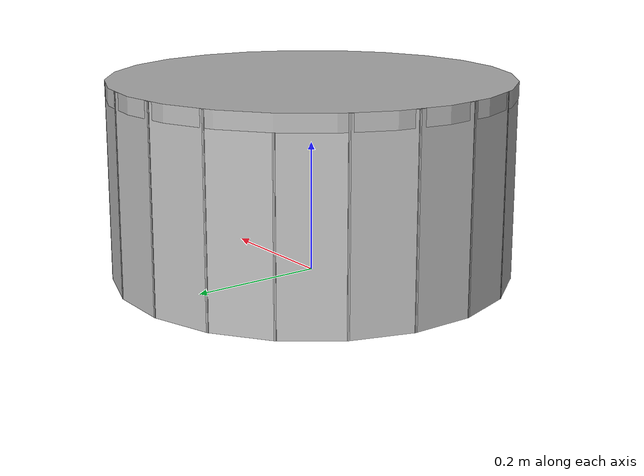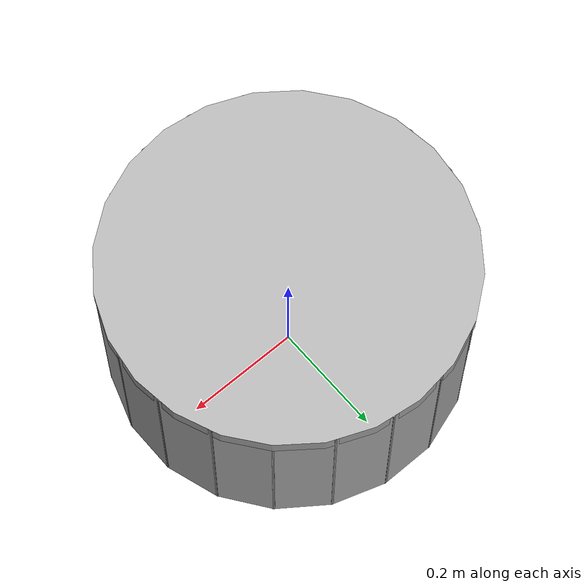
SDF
<?xml version="1.0"?>
<sdf version="1.9">
  <model name="sauvc_drum_red">
    <static>true</static>
    <plugin filename="gz-sim-label-system" name="gz::sim::systems::Label">
      <label>7</label>
    </plugin>
    <link name="base">
      <pose>0 0 0.01 0 0 0</pose>
      <inertial>
        <pose>0 0 0 0 0 0</pose>
        <mass>3</mass>
        <inertia>
          <ixx>0.0676</ixx><ixy>0</ixy><ixz>0</ixz>
          <iyy>0.0676</iyy><iyz>0</iyz>
          <izz>0.135</izz>
        </inertia>
      </inertial>
      <visual name="base_visual">
        <pose>0 0 0 0 0 0</pose>
        <geometry><cylinder><radius>0.3</radius><length>0.02</length></cylinder></geometry>
        <material>
          <ambient>0.8 0.1 0.1 1</ambient>
          <diffuse>0.8 0.1 0.1 1</diffuse>
          <specular>0.2 0.2 0.2 1</specular>
          <emissive>0.44 0.055 0.055 1</emissive>
        </material>
      </visual>
      <collision name="base_collision">
        <pose>0 0 0 0 0 0</pose>
        <geometry><cylinder><radius>0.3</radius><length>0.02</length></cylinder></geometry>
      </collision>
    </link>
    <link name="rim">
      <pose>0 0 0.288 0 0 0</pose>
      <inertial>
        <pose>0 0 0 0 0 0</pose>
        <mass>0.3</mass>
        <inertia>
          <ixx>0.0069925</ixx><ixy>0</ixy><ixz>0</ixz>
          <iyy>0.0069925</iyy><iyz>0</iyz>
          <izz>0.0139537</izz>
        </inertia>
      </inertial>
      <visual name="rim_visual">
        <pose>0 0 0 0 0 0</pose>
        <geometry><cylinder><radius>0.305</radius><length>0.025</length></cylinder></geometry>
        <material>
          <ambient>0.7 0.7 0.7 1</ambient>
          <diffuse>0.7 0.7 0.7 1</diffuse>
          <specular>0.35 0.35 0.35 1</specular>
          <emissive>0.08 0.08 0.08 1</emissive>
          <pbr>
            <metal>
              <albedo_map>model://sauvc_textures/drum_rim.png</albedo_map>
              <metalness>0.0</metalness>
              <roughness>0.4</roughness>
            </metal>
          </pbr>
        </material>
      </visual>
    </link>
    <link name="wall_0">
      <pose>0.29 0 0.15 0 0 0.000000</pose>
      <inertial>
        <pose>0 0 0 0 0 0</pose>
        <mass>0.2</mass>
        <inertia>
          <ixx>0.00166188</ixx><ixy>0</ixy><ixz>0</ixz>
          <iyy>0.00150667</iyy><iyz>0</iyz>
          <izz>0.000168547</izz>
        </inertia>
      </inertial>
      <visual name="wall_0_visual">
        <pose>0 0 0 0 0 0</pose>
        <geometry><box><size>0.02 0.0985537 0.3</size></box></geometry>
        <material>
          <ambient>0.72 0.72 0.72 1</ambient>
          <diffuse>0.72 0.72 0.72 1</diffuse>
          <specular>0.14 0.14 0.14 1</specular>
          <emissive>0.1 0.1 0.1 1</emissive>
          <pbr>
            <metal>
              <albedo_map>model://sauvc_textures/drum_wall_red.png</albedo_map>
              <metalness>0.0</metalness>
              <roughness_map>model://sauvc_textures/rough_plastic.png</roughness_map>
              <normal_map>model://sauvc_textures/norm_plastic.png</normal_map>
            </metal>
          </pbr>
        </material>
      </visual>
    </link>
    <link name="wall_1">
      <pose>0.275806 0.0896149 0.15 0 0 0.314159</pose>
      <inertial>
        <pose>0 0 0 0 0 0</pose>
        <mass>0.2</mass>
        <inertia>
          <ixx>0.00166188</ixx><ixy>0</ixy><ixz>0</ixz>
          <iyy>0.00150667</iyy><iyz>0</iyz>
          <izz>0.000168547</izz>
        </inertia>
      </inertial>
      <visual name="wall_1_visual">
        <pose>0 0 0 0 0 0</pose>
        <geometry><box><size>0.02 0.0985537 0.3</size></box></geometry>
        <material>
          <ambient>0.72 0.72 0.72 1</ambient>
          <diffuse>0.72 0.72 0.72 1</diffuse>
          <specular>0.14 0.14 0.14 1</specular>
          <emissive>0.1 0.1 0.1 1</emissive>
          <pbr>
            <metal>
              <albedo_map>model://sauvc_textures/drum_wall_red.png</albedo_map>
              <metalness>0.0</metalness>
              <roughness_map>model://sauvc_textures/rough_plastic.png</roughness_map>
              <normal_map>model://sauvc_textures/norm_plastic.png</normal_map>
            </metal>
          </pbr>
        </material>
      </visual>
    </link>
    <link name="wall_2">
      <pose>0.234615 0.170458 0.15 0 0 0.628319</pose>
      <inertial>
        <pose>0 0 0 0 0 0</pose>
        <mass>0.2</mass>
        <inertia>
          <ixx>0.00166188</ixx><ixy>0</ixy><ixz>0</ixz>
          <iyy>0.00150667</iyy><iyz>0</iyz>
          <izz>0.000168547</izz>
        </inertia>
      </inertial>
      <visual name="wall_2_visual">
        <pose>0 0 0 0 0 0</pose>
        <geometry><box><size>0.02 0.0985537 0.3</size></box></geometry>
        <material>
          <ambient>0.72 0.72 0.72 1</ambient>
          <diffuse>0.72 0.72 0.72 1</diffuse>
          <specular>0.14 0.14 0.14 1</specular>
          <emissive>0.1 0.1 0.1 1</emissive>
          <pbr>
            <metal>
              <albedo_map>model://sauvc_textures/drum_wall_red.png</albedo_map>
              <metalness>0.0</metalness>
              <roughness_map>model://sauvc_textures/rough_plastic.png</roughness_map>
              <normal_map>model://sauvc_textures/norm_plastic.png</normal_map>
            </metal>
          </pbr>
        </material>
      </visual>
    </link>
    <link name="wall_3">
      <pose>0.170458 0.234615 0.15 0 0 0.942478</pose>
      <inertial>
        <pose>0 0 0 0 0 0</pose>
        <mass>0.2</mass>
        <inertia>
          <ixx>0.00166188</ixx><ixy>0</ixy><ixz>0</ixz>
          <iyy>0.00150667</iyy><iyz>0</iyz>
          <izz>0.000168547</izz>
        </inertia>
      </inertial>
      <visual name="wall_3_visual">
        <pose>0 0 0 0 0 0</pose>
        <geometry><box><size>0.02 0.0985537 0.3</size></box></geometry>
        <material>
          <ambient>0.72 0.72 0.72 1</ambient>
          <diffuse>0.72 0.72 0.72 1</diffuse>
          <specular>0.14 0.14 0.14 1</specular>
          <emissive>0.1 0.1 0.1 1</emissive>
          <pbr>
            <metal>
              <albedo_map>model://sauvc_textures/drum_wall_red.png</albedo_map>
              <metalness>0.0</metalness>
              <roughness_map>model://sauvc_textures/rough_plastic.png</roughness_map>
              <normal_map>model://sauvc_textures/norm_plastic.png</normal_map>
            </metal>
          </pbr>
        </material>
      </visual>
    </link>
    <link name="wall_4">
      <pose>0.0896149 0.275806 0.15 0 0 1.256637</pose>
      <inertial>
        <pose>0 0 0 0 0 0</pose>
        <mass>0.2</mass>
        <inertia>
          <ixx>0.00166188</ixx><ixy>0</ixy><ixz>0</ixz>
          <iyy>0.00150667</iyy><iyz>0</iyz>
          <izz>0.000168547</izz>
        </inertia>
      </inertial>
      <visual name="wall_4_visual">
        <pose>0 0 0 0 0 0</pose>
        <geometry><box><size>0.02 0.0985537 0.3</size></box></geometry>
        <material>
          <ambient>0.72 0.72 0.72 1</ambient>
          <diffuse>0.72 0.72 0.72 1</diffuse>
          <specular>0.14 0.14 0.14 1</specular>
          <emissive>0.1 0.1 0.1 1</emissive>
          <pbr>
            <metal>
              <albedo_map>model://sauvc_textures/drum_wall_red.png</albedo_map>
              <metalness>0.0</metalness>
              <roughness_map>model://sauvc_textures/rough_plastic.png</roughness_map>
              <normal_map>model://sauvc_textures/norm_plastic.png</normal_map>
            </metal>
          </pbr>
        </material>
      </visual>
    </link>
    <link name="wall_5">
      <pose>1.77574e-17 0.29 0.15 0 0 1.570796</pose>
      <inertial>
        <pose>0 0 0 0 0 0</pose>
        <mass>0.2</mass>
        <inertia>
          <ixx>0.00166188</ixx><ixy>0</ixy><ixz>0</ixz>
          <iyy>0.00150667</iyy><iyz>0</iyz>
          <izz>0.000168547</izz>
        </inertia>
      </inertial>
      <visual name="wall_5_visual">
        <pose>0 0 0 0 0 0</pose>
        <geometry><box><size>0.02 0.0985537 0.3</size></box></geometry>
        <material>
          <ambient>0.72 0.72 0.72 1</ambient>
          <diffuse>0.72 0.72 0.72 1</diffuse>
          <specular>0.14 0.14 0.14 1</specular>
          <emissive>0.1 0.1 0.1 1</emissive>
          <pbr>
            <metal>
              <albedo_map>model://sauvc_textures/drum_wall_red.png</albedo_map>
              <metalness>0.0</metalness>
              <roughness_map>model://sauvc_textures/rough_plastic.png</roughness_map>
              <normal_map>model://sauvc_textures/norm_plastic.png</normal_map>
            </metal>
          </pbr>
        </material>
      </visual>
    </link>
    <link name="wall_6">
      <pose>-0.0896149 0.275806 0.15 0 0 1.884956</pose>
      <inertial>
        <pose>0 0 0 0 0 0</pose>
        <mass>0.2</mass>
        <inertia>
          <ixx>0.00166188</ixx><ixy>0</ixy><ixz>0</ixz>
          <iyy>0.00150667</iyy><iyz>0</iyz>
          <izz>0.000168547</izz>
        </inertia>
      </inertial>
      <visual name="wall_6_visual">
        <pose>0 0 0 0 0 0</pose>
        <geometry><box><size>0.02 0.0985537 0.3</size></box></geometry>
        <material>
          <ambient>0.72 0.72 0.72 1</ambient>
          <diffuse>0.72 0.72 0.72 1</diffuse>
          <specular>0.14 0.14 0.14 1</specular>
          <emissive>0.1 0.1 0.1 1</emissive>
          <pbr>
            <metal>
              <albedo_map>model://sauvc_textures/drum_wall_red.png</albedo_map>
              <metalness>0.0</metalness>
              <roughness_map>model://sauvc_textures/rough_plastic.png</roughness_map>
              <normal_map>model://sauvc_textures/norm_plastic.png</normal_map>
            </metal>
          </pbr>
        </material>
      </visual>
    </link>
    <link name="wall_7">
      <pose>-0.170458 0.234615 0.15 0 0 2.199115</pose>
      <inertial>
        <pose>0 0 0 0 0 0</pose>
        <mass>0.2</mass>
        <inertia>
          <ixx>0.00166188</ixx><ixy>0</ixy><ixz>0</ixz>
          <iyy>0.00150667</iyy><iyz>0</iyz>
          <izz>0.000168547</izz>
        </inertia>
      </inertial>
      <visual name="wall_7_visual">
        <pose>0 0 0 0 0 0</pose>
        <geometry><box><size>0.02 0.0985537 0.3</size></box></geometry>
        <material>
          <ambient>0.72 0.72 0.72 1</ambient>
          <diffuse>0.72 0.72 0.72 1</diffuse>
          <specular>0.14 0.14 0.14 1</specular>
          <emissive>0.1 0.1 0.1 1</emissive>
          <pbr>
            <metal>
              <albedo_map>model://sauvc_textures/drum_wall_red.png</albedo_map>
              <metalness>0.0</metalness>
              <roughness_map>model://sauvc_textures/rough_plastic.png</roughness_map>
              <normal_map>model://sauvc_textures/norm_plastic.png</normal_map>
            </metal>
          </pbr>
        </material>
      </visual>
    </link>
    <link name="wall_8">
      <pose>-0.234615 0.170458 0.15 0 0 2.513274</pose>
      <inertial>
        <pose>0 0 0 0 0 0</pose>
        <mass>0.2</mass>
        <inertia>
          <ixx>0.00166188</ixx><ixy>0</ixy><ixz>0</ixz>
          <iyy>0.00150667</iyy><iyz>0</iyz>
          <izz>0.000168547</izz>
        </inertia>
      </inertial>
      <visual name="wall_8_visual">
        <pose>0 0 0 0 0 0</pose>
        <geometry><box><size>0.02 0.0985537 0.3</size></box></geometry>
        <material>
          <ambient>0.72 0.72 0.72 1</ambient>
          <diffuse>0.72 0.72 0.72 1</diffuse>
          <specular>0.14 0.14 0.14 1</specular>
          <emissive>0.1 0.1 0.1 1</emissive>
          <pbr>
            <metal>
              <albedo_map>model://sauvc_textures/drum_wall_red.png</albedo_map>
              <metalness>0.0</metalness>
              <roughness_map>model://sauvc_textures/rough_plastic.png</roughness_map>
              <normal_map>model://sauvc_textures/norm_plastic.png</normal_map>
            </metal>
          </pbr>
        </material>
      </visual>
    </link>
    <link name="wall_9">
      <pose>-0.275806 0.0896149 0.15 0 0 2.827433</pose>
      <inertial>
        <pose>0 0 0 0 0 0</pose>
        <mass>0.2</mass>
        <inertia>
          <ixx>0.00166188</ixx><ixy>0</ixy><ixz>0</ixz>
          <iyy>0.00150667</iyy><iyz>0</iyz>
          <izz>0.000168547</izz>
        </inertia>
      </inertial>
      <visual name="wall_9_visual">
        <pose>0 0 0 0 0 0</pose>
        <geometry><box><size>0.02 0.0985537 0.3</size></box></geometry>
        <material>
          <ambient>0.72 0.72 0.72 1</ambient>
          <diffuse>0.72 0.72 0.72 1</diffuse>
          <specular>0.14 0.14 0.14 1</specular>
          <emissive>0.1 0.1 0.1 1</emissive>
          <pbr>
            <metal>
              <albedo_map>model://sauvc_textures/drum_wall_red.png</albedo_map>
              <metalness>0.0</metalness>
              <roughness_map>model://sauvc_textures/rough_plastic.png</roughness_map>
              <normal_map>model://sauvc_textures/norm_plastic.png</normal_map>
            </metal>
          </pbr>
        </material>
      </visual>
    </link>
    <link name="wall_10">
      <pose>-0.29 3.55148e-17 0.15 0 0 3.141593</pose>
      <inertial>
        <pose>0 0 0 0 0 0</pose>
        <mass>0.2</mass>
        <inertia>
          <ixx>0.00166188</ixx><ixy>0</ixy><ixz>0</ixz>
          <iyy>0.00150667</iyy><iyz>0</iyz>
          <izz>0.000168547</izz>
        </inertia>
      </inertial>
      <visual name="wall_10_visual">
        <pose>0 0 0 0 0 0</pose>
        <geometry><box><size>0.02 0.0985537 0.3</size></box></geometry>
        <material>
          <ambient>0.72 0.72 0.72 1</ambient>
          <diffuse>0.72 0.72 0.72 1</diffuse>
          <specular>0.14 0.14 0.14 1</specular>
          <emissive>0.1 0.1 0.1 1</emissive>
          <pbr>
            <metal>
              <albedo_map>model://sauvc_textures/drum_wall_red.png</albedo_map>
              <metalness>0.0</metalness>
              <roughness_map>model://sauvc_textures/rough_plastic.png</roughness_map>
              <normal_map>model://sauvc_textures/norm_plastic.png</normal_map>
            </metal>
          </pbr>
        </material>
      </visual>
    </link>
    <link name="wall_11">
      <pose>-0.275806 -0.0896149 0.15 0 0 3.455752</pose>
      <inertial>
        <pose>0 0 0 0 0 0</pose>
        <mass>0.2</mass>
        <inertia>
          <ixx>0.00166188</ixx><ixy>0</ixy><ixz>0</ixz>
          <iyy>0.00150667</iyy><iyz>0</iyz>
          <izz>0.000168547</izz>
        </inertia>
      </inertial>
      <visual name="wall_11_visual">
        <pose>0 0 0 0 0 0</pose>
        <geometry><box><size>0.02 0.0985537 0.3</size></box></geometry>
        <material>
          <ambient>0.72 0.72 0.72 1</ambient>
          <diffuse>0.72 0.72 0.72 1</diffuse>
          <specular>0.14 0.14 0.14 1</specular>
          <emissive>0.1 0.1 0.1 1</emissive>
          <pbr>
            <metal>
              <albedo_map>model://sauvc_textures/drum_wall_red.png</albedo_map>
              <metalness>0.0</metalness>
              <roughness_map>model://sauvc_textures/rough_plastic.png</roughness_map>
              <normal_map>model://sauvc_textures/norm_plastic.png</normal_map>
            </metal>
          </pbr>
        </material>
      </visual>
    </link>
    <link name="wall_12">
      <pose>-0.234615 -0.170458 0.15 0 0 3.769911</pose>
      <inertial>
        <pose>0 0 0 0 0 0</pose>
        <mass>0.2</mass>
        <inertia>
          <ixx>0.00166188</ixx><ixy>0</ixy><ixz>0</ixz>
          <iyy>0.00150667</iyy><iyz>0</iyz>
          <izz>0.000168547</izz>
        </inertia>
      </inertial>
      <visual name="wall_12_visual">
        <pose>0 0 0 0 0 0</pose>
        <geometry><box><size>0.02 0.0985537 0.3</size></box></geometry>
        <material>
          <ambient>0.72 0.72 0.72 1</ambient>
          <diffuse>0.72 0.72 0.72 1</diffuse>
          <specular>0.14 0.14 0.14 1</specular>
          <emissive>0.1 0.1 0.1 1</emissive>
          <pbr>
            <metal>
              <albedo_map>model://sauvc_textures/drum_wall_red.png</albedo_map>
              <metalness>0.0</metalness>
              <roughness_map>model://sauvc_textures/rough_plastic.png</roughness_map>
              <normal_map>model://sauvc_textures/norm_plastic.png</normal_map>
            </metal>
          </pbr>
        </material>
      </visual>
    </link>
    <link name="wall_13">
      <pose>-0.170458 -0.234615 0.15 0 0 4.084070</pose>
      <inertial>
        <pose>0 0 0 0 0 0</pose>
        <mass>0.2</mass>
        <inertia>
          <ixx>0.00166188</ixx><ixy>0</ixy><ixz>0</ixz>
          <iyy>0.00150667</iyy><iyz>0</iyz>
          <izz>0.000168547</izz>
        </inertia>
      </inertial>
      <visual name="wall_13_visual">
        <pose>0 0 0 0 0 0</pose>
        <geometry><box><size>0.02 0.0985537 0.3</size></box></geometry>
        <material>
          <ambient>0.72 0.72 0.72 1</ambient>
          <diffuse>0.72 0.72 0.72 1</diffuse>
          <specular>0.14 0.14 0.14 1</specular>
          <emissive>0.1 0.1 0.1 1</emissive>
          <pbr>
            <metal>
              <albedo_map>model://sauvc_textures/drum_wall_red.png</albedo_map>
              <metalness>0.0</metalness>
              <roughness_map>model://sauvc_textures/rough_plastic.png</roughness_map>
              <normal_map>model://sauvc_textures/norm_plastic.png</normal_map>
            </metal>
          </pbr>
        </material>
      </visual>
    </link>
    <link name="wall_14">
      <pose>-0.0896149 -0.275806 0.15 0 0 4.398230</pose>
      <inertial>
        <pose>0 0 0 0 0 0</pose>
        <mass>0.2</mass>
        <inertia>
          <ixx>0.00166188</ixx><ixy>0</ixy><ixz>0</ixz>
          <iyy>0.00150667</iyy><iyz>0</iyz>
          <izz>0.000168547</izz>
        </inertia>
      </inertial>
      <visual name="wall_14_visual">
        <pose>0 0 0 0 0 0</pose>
        <geometry><box><size>0.02 0.0985537 0.3</size></box></geometry>
        <material>
          <ambient>0.72 0.72 0.72 1</ambient>
          <diffuse>0.72 0.72 0.72 1</diffuse>
          <specular>0.14 0.14 0.14 1</specular>
          <emissive>0.1 0.1 0.1 1</emissive>
          <pbr>
            <metal>
              <albedo_map>model://sauvc_textures/drum_wall_red.png</albedo_map>
              <metalness>0.0</metalness>
              <roughness_map>model://sauvc_textures/rough_plastic.png</roughness_map>
              <normal_map>model://sauvc_textures/norm_plastic.png</normal_map>
            </metal>
          </pbr>
        </material>
      </visual>
    </link>
    <link name="wall_15">
      <pose>-5.32721e-17 -0.29 0.15 0 0 4.712389</pose>
      <inertial>
        <pose>0 0 0 0 0 0</pose>
        <mass>0.2</mass>
        <inertia>
          <ixx>0.00166188</ixx><ixy>0</ixy><ixz>0</ixz>
          <iyy>0.00150667</iyy><iyz>0</iyz>
          <izz>0.000168547</izz>
        </inertia>
      </inertial>
      <visual name="wall_15_visual">
        <pose>0 0 0 0 0 0</pose>
        <geometry><box><size>0.02 0.0985537 0.3</size></box></geometry>
        <material>
          <ambient>0.72 0.72 0.72 1</ambient>
          <diffuse>0.72 0.72 0.72 1</diffuse>
          <specular>0.14 0.14 0.14 1</specular>
          <emissive>0.1 0.1 0.1 1</emissive>
          <pbr>
            <metal>
              <albedo_map>model://sauvc_textures/drum_wall_red.png</albedo_map>
              <metalness>0.0</metalness>
              <roughness_map>model://sauvc_textures/rough_plastic.png</roughness_map>
              <normal_map>model://sauvc_textures/norm_plastic.png</normal_map>
            </metal>
          </pbr>
        </material>
      </visual>
    </link>
    <link name="wall_16">
      <pose>0.0896149 -0.275806 0.15 0 0 5.026548</pose>
      <inertial>
        <pose>0 0 0 0 0 0</pose>
        <mass>0.2</mass>
        <inertia>
          <ixx>0.00166188</ixx><ixy>0</ixy><ixz>0</ixz>
          <iyy>0.00150667</iyy><iyz>0</iyz>
          <izz>0.000168547</izz>
        </inertia>
      </inertial>
      <visual name="wall_16_visual">
        <pose>0 0 0 0 0 0</pose>
        <geometry><box><size>0.02 0.0985537 0.3</size></box></geometry>
        <material>
          <ambient>0.72 0.72 0.72 1</ambient>
          <diffuse>0.72 0.72 0.72 1</diffuse>
          <specular>0.14 0.14 0.14 1</specular>
          <emissive>0.1 0.1 0.1 1</emissive>
          <pbr>
            <metal>
              <albedo_map>model://sauvc_textures/drum_wall_red.png</albedo_map>
              <metalness>0.0</metalness>
              <roughness_map>model://sauvc_textures/rough_plastic.png</roughness_map>
              <normal_map>model://sauvc_textures/norm_plastic.png</normal_map>
            </metal>
          </pbr>
        </material>
      </visual>
    </link>
    <link name="wall_17">
      <pose>0.170458 -0.234615 0.15 0 0 5.340708</pose>
      <inertial>
        <pose>0 0 0 0 0 0</pose>
        <mass>0.2</mass>
        <inertia>
          <ixx>0.00166188</ixx><ixy>0</ixy><ixz>0</ixz>
          <iyy>0.00150667</iyy><iyz>0</iyz>
          <izz>0.000168547</izz>
        </inertia>
      </inertial>
      <visual name="wall_17_visual">
        <pose>0 0 0 0 0 0</pose>
        <geometry><box><size>0.02 0.0985537 0.3</size></box></geometry>
        <material>
          <ambient>0.72 0.72 0.72 1</ambient>
          <diffuse>0.72 0.72 0.72 1</diffuse>
          <specular>0.14 0.14 0.14 1</specular>
          <emissive>0.1 0.1 0.1 1</emissive>
          <pbr>
            <metal>
              <albedo_map>model://sauvc_textures/drum_wall_red.png</albedo_map>
              <metalness>0.0</metalness>
              <roughness_map>model://sauvc_textures/rough_plastic.png</roughness_map>
              <normal_map>model://sauvc_textures/norm_plastic.png</normal_map>
            </metal>
          </pbr>
        </material>
      </visual>
    </link>
    <link name="wall_18">
      <pose>0.234615 -0.170458 0.15 0 0 5.654867</pose>
      <inertial>
        <pose>0 0 0 0 0 0</pose>
        <mass>0.2</mass>
        <inertia>
          <ixx>0.00166188</ixx><ixy>0</ixy><ixz>0</ixz>
          <iyy>0.00150667</iyy><iyz>0</iyz>
          <izz>0.000168547</izz>
        </inertia>
      </inertial>
      <visual name="wall_18_visual">
        <pose>0 0 0 0 0 0</pose>
        <geometry><box><size>0.02 0.0985537 0.3</size></box></geometry>
        <material>
          <ambient>0.72 0.72 0.72 1</ambient>
          <diffuse>0.72 0.72 0.72 1</diffuse>
          <specular>0.14 0.14 0.14 1</specular>
          <emissive>0.1 0.1 0.1 1</emissive>
          <pbr>
            <metal>
              <albedo_map>model://sauvc_textures/drum_wall_red.png</albedo_map>
              <metalness>0.0</metalness>
              <roughness_map>model://sauvc_textures/rough_plastic.png</roughness_map>
              <normal_map>model://sauvc_textures/norm_plastic.png</normal_map>
            </metal>
          </pbr>
        </material>
      </visual>
    </link>
    <link name="wall_19">
      <pose>0.275806 -0.0896149 0.15 0 0 5.969026</pose>
      <inertial>
        <pose>0 0 0 0 0 0</pose>
        <mass>0.2</mass>
        <inertia>
          <ixx>0.00166188</ixx><ixy>0</ixy><ixz>0</ixz>
          <iyy>0.00150667</iyy><iyz>0</iyz>
          <izz>0.000168547</izz>
        </inertia>
      </inertial>
      <visual name="wall_19_visual">
        <pose>0 0 0 0 0 0</pose>
        <geometry><box><size>0.02 0.0985537 0.3</size></box></geometry>
        <material>
          <ambient>0.72 0.72 0.72 1</ambient>
          <diffuse>0.72 0.72 0.72 1</diffuse>
          <specular>0.14 0.14 0.14 1</specular>
          <emissive>0.1 0.1 0.1 1</emissive>
          <pbr>
            <metal>
              <albedo_map>model://sauvc_textures/drum_wall_red.png</albedo_map>
              <metalness>0.0</metalness>
              <roughness_map>model://sauvc_textures/rough_plastic.png</roughness_map>
              <normal_map>model://sauvc_textures/norm_plastic.png</normal_map>
            </metal>
          </pbr>
        </material>
      </visual>
    </link>
    <link name="liner">
      <pose>0 0 0.15 0 0 0</pose>
      <inertial>
        <pose>0 0 0 0 0 0</pose>
        <mass>0.05</mass>
        <inertia>
          <ixx>0.0015</ixx><ixy>0</ixy><ixz>0</ixz>
          <iyy>0.0015</iyy><iyz>0</iyz>
          <izz>0.00225</izz>
        </inertia>
      </inertial>
      <visual name="liner_visual">
        <pose>0 0 0 0 0 0</pose>
        <geometry><cylinder><radius>0.272</radius><length>0.294</length></cylinder></geometry>
        <material>
          <ambient>0.8 0.1 0.1 1</ambient>
          <diffuse>0.8 0.1 0.1 1</diffuse>
          <specular>0.2 0.2 0.2 1</specular>
          <emissive>0.24 0.03 0.03 1</emissive>
        </material>
      </visual>
    </link>
    <link name="collide_xp">
      <pose>0.28 0 0.15 0 0 0</pose>
      <inertial>
        <pose>0 0 0 0 0 0</pose>
        <mass>0.1</mass>
        <inertia>
          <ixx>0.01</ixx><ixy>0</ixy><ixz>0</ixz>
          <iyy>0.01</iyy><iyz>0</iyz>
          <izz>0.01</izz>
        </inertia>
      </inertial>
      <collision name="collide_xp_collision">
        <pose>0 0 0 0 0 0</pose>
        <geometry><box><size>0.04 0.56 0.3</size></box></geometry>
      </collision>
    </link>
    <link name="collide_xn">
      <pose>-0.28 0 0.15 0 0 0</pose>
      <inertial>
        <pose>0 0 0 0 0 0</pose>
        <mass>0.1</mass>
        <inertia>
          <ixx>0.01</ixx><ixy>0</ixy><ixz>0</ixz>
          <iyy>0.01</iyy><iyz>0</iyz>
          <izz>0.01</izz>
        </inertia>
      </inertial>
      <collision name="collide_xn_collision">
        <pose>0 0 0 0 0 0</pose>
        <geometry><box><size>0.04 0.56 0.3</size></box></geometry>
      </collision>
    </link>
    <link name="collide_yp">
      <pose>0 0.28 0.15 0 0 0</pose>
      <inertial>
        <pose>0 0 0 0 0 0</pose>
        <mass>0.1</mass>
        <inertia>
          <ixx>0.01</ixx><ixy>0</ixy><ixz>0</ixz>
          <iyy>0.01</iyy><iyz>0</iyz>
          <izz>0.01</izz>
        </inertia>
      </inertial>
      <collision name="collide_yp_collision">
        <pose>0 0 0 0 0 0</pose>
        <geometry><box><size>0.56 0.04 0.3</size></box></geometry>
      </collision>
    </link>
    <link name="collide_yn">
      <pose>0 -0.28 0.15 0 0 0</pose>
      <inertial>
        <pose>0 0 0 0 0 0</pose>
        <mass>0.1</mass>
        <inertia>
          <ixx>0.01</ixx><ixy>0</ixy><ixz>0</ixz>
          <iyy>0.01</iyy><iyz>0</iyz>
          <izz>0.01</izz>
        </inertia>
      </inertial>
      <collision name="collide_yn_collision">
        <pose>0 0 0 0 0 0</pose>
        <geometry><box><size>0.56 0.04 0.3</size></box></geometry>
      </collision>
    </link>
  </model>
</sdf>
